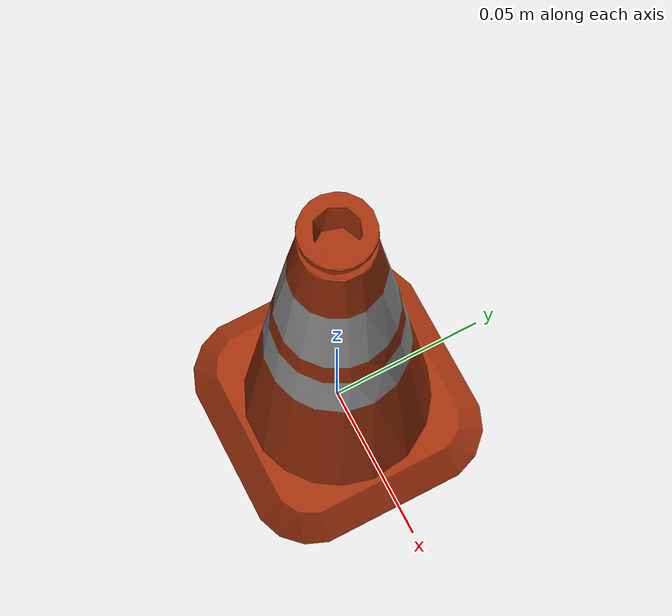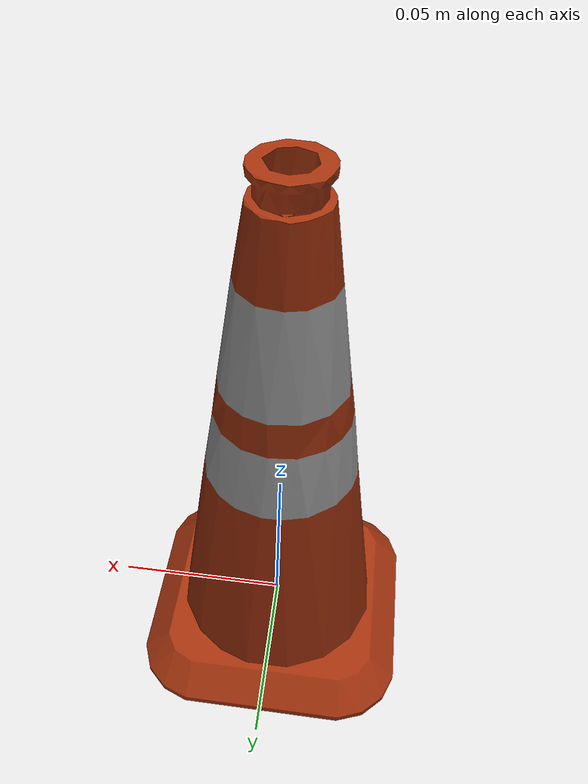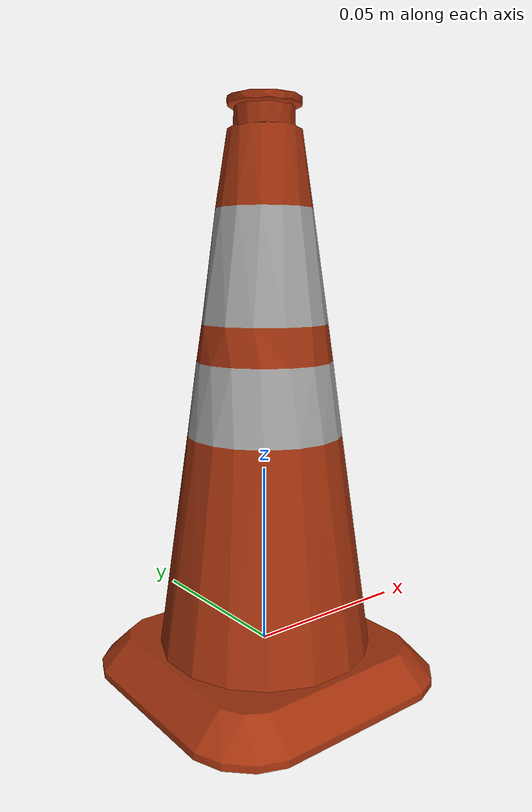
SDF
<?xml version='1.0' encoding='UTF-8'?>
<sdf version="1.4">
  <model name="cone_orange_big">
    <link name="link">
      <collision name="collision">
        <geometry>
          <mesh>
            <uri>model://cone/cone_orange_big.dae</uri>
     	      <scale>0.3 0.3 0.3</scale>
          </mesh>
        </geometry>
      </collision>
      <visual name="visual">
        <geometry>
          <mesh>
            <uri>model://cone/cone_orange_big.dae</uri>
            <scale>0.3 0.3 0.3</scale>
          </mesh>
        </geometry>
      </visual>
    </link>
  </model>
</sdf>
